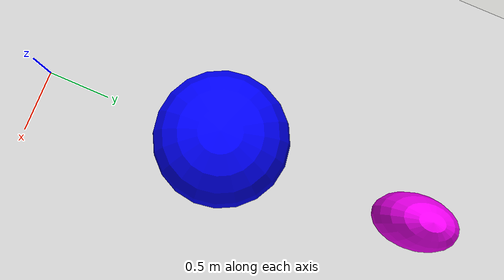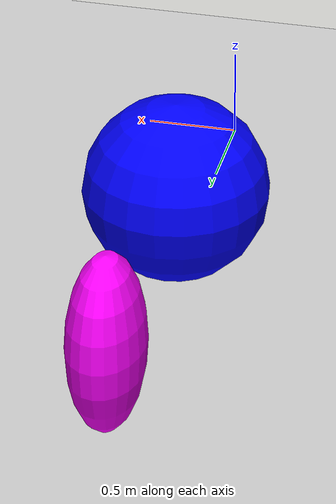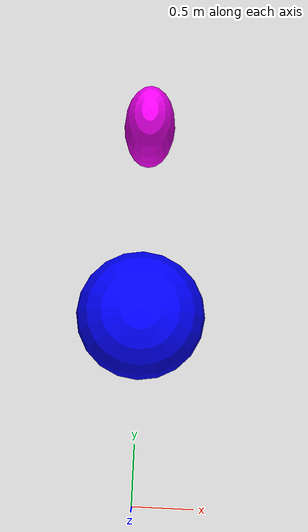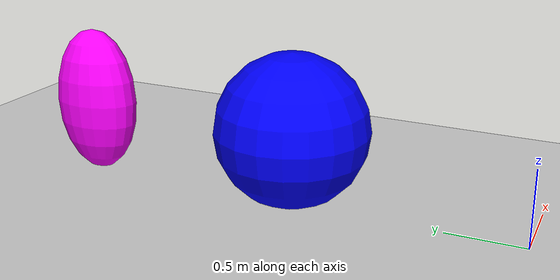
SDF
<sdf version='1.10'>
  <world name='shapes'>
    <scene>
      <ambient>1 1 1 1</ambient>
      <background>0.800000012 0.800000012 0.800000012 1</background>
      <shadows>true</shadows>
    </scene>
    <gravity>0 0 -9.8000000000000007</gravity>
    <magnetic_field>5.5644999999999998e-06 2.2875799999999999e-05 -4.2388400000000002e-05</magnetic_field>
    <atmosphere type='adiabatic'/>
    <physics type='ode'>
      <max_step_size>0.001</max_step_size>
      <real_time_factor>1</real_time_factor>
      <real_time_update_rate>1000</real_time_update_rate>
    </physics>
    <model name='ground_plane'>
      <static>true</static>
      <link name='link'>
        <collision name='collision'>
          <geometry>
            <plane>
              <normal>0 0 1</normal>
              <size>100 100</size>
            </plane>
          </geometry>
          <surface>
            <friction>
              <ode/>
            </friction>
            <bounce/>
            <contact/>
          </surface>
        </collision>
        <visual name='visual'>
          <geometry>
            <plane>
              <normal>0 0 1</normal>
              <size>100 100</size>
            </plane>
          </geometry>
          <material>
            <ambient>0.800000012 0.800000012 0.800000012 1</ambient>
            <diffuse>0.800000012 0.800000012 0.800000012 1</diffuse>
            <specular>0.800000012 0.800000012 0.800000012 1</specular>
          </material>
        </visual>
        <pose>0 0 0 0 0 0</pose>
        <inertial>
          <pose>0 0 0 0 0 0</pose>
          <mass>1</mass>
          <inertia>
            <ixx>1</ixx>
            <ixy>0</ixy>
            <ixz>0</ixz>
            <iyy>1</iyy>
            <iyz>0</iyz>
            <izz>1</izz>
          </inertia>
        </inertial>
        <enable_wind>false</enable_wind>
      </link>
      <pose>0 0 0 0 0 0</pose>
      <self_collide>false</self_collide>
    </model>
    <model name='sphere'>
      <pose>0 1.5 0.5 0 0 0</pose>
      <link name='sphere_link'>
        <inertial>
          <inertia>
            <ixx>0.10000000000000001</ixx>
            <ixy>0</ixy>
            <ixz>0</ixz>
            <iyy>0.10000000000000001</iyy>
            <iyz>0</iyz>
            <izz>0.10000000000000001</izz>
          </inertia>
          <mass>1</mass>
          <pose>0 0 0 0 0 0</pose>
        </inertial>
        <collision name='sphere_collision'>
          <geometry>
            <sphere>
              <radius>0.5</radius>
            </sphere>
          </geometry>
          <surface>
            <friction>
              <ode/>
            </friction>
            <bounce/>
            <contact/>
          </surface>
        </collision>
        <visual name='sphere_visual'>
          <geometry>
            <sphere>
              <radius>0.5</radius>
            </sphere>
          </geometry>
          <material>
            <ambient>0 0 1 1</ambient>
            <diffuse>0 0 1 1</diffuse>
            <specular>0 0 1 1</specular>
          </material>
        </visual>
        <pose>0 0 0 0 0 0</pose>
        <enable_wind>false</enable_wind>
      </link>
      <static>false</static>
      <self_collide>false</self_collide>
    </model>
    <model name='ellipsoid'>
      <pose>0 3 0.5 0 0 0</pose>
      <link name='ellipsoid_link'>
        <inertial>
          <inertia>
            <ixx>0.068000000000000005</ixx>
            <ixy>0</ixy>
            <ixz>0</ixz>
            <iyy>0.058000000000000003</iyy>
            <iyz>0</iyz>
            <izz>0.025999999999999999</izz>
          </inertia>
          <mass>1</mass>
          <pose>0 0 0 0 0 0</pose>
        </inertial>
        <collision name='ellipsoid_collision'>
          <geometry>
            <ellipsoid>
              <radii>0.20000000000000001 0.29999999999999999 0.5</radii>
            </ellipsoid>
          </geometry>
          <surface>
            <friction>
              <ode/>
            </friction>
            <bounce/>
            <contact/>
          </surface>
        </collision>
        <visual name='ellipsoid_visual'>
          <geometry>
            <ellipsoid>
              <radii>0.20000000000000001 0.29999999999999999 0.5</radii>
            </ellipsoid>
          </geometry>
          <material>
            <ambient>1 0 1 1</ambient>
            <diffuse>1 0 1 1</diffuse>
            <specular>1 0 1 1</specular>
          </material>
        </visual>
        <pose>0 0 0 0 0 0</pose>
        <enable_wind>false</enable_wind>
      </link>
      <static>false</static>
      <self_collide>false</self_collide>
    </model>
    <light name='sun' type='directional'>
      <pose>0 0 10 0 0 0</pose>
      <cast_shadows>true</cast_shadows>
      <intensity>1</intensity>
      <direction>-0.5 0.10000000000000001 -0.90000000000000002</direction>
      <diffuse>0.800000012 0.800000012 0.800000012 1</diffuse>
      <specular>0.200000003 0.200000003 0.200000003 1</specular>
      <attenuation>
        <range>1000</range>
        <linear>0.01</linear>
        <constant>0.90000000000000002</constant>
        <quadratic>0.001</quadratic>
      </attenuation>
      <spot>
        <inner_angle>0</inner_angle>
        <outer_angle>0</outer_angle>
        <falloff>0</falloff>
      </spot>
    </light>
  </world>
</sdf>
